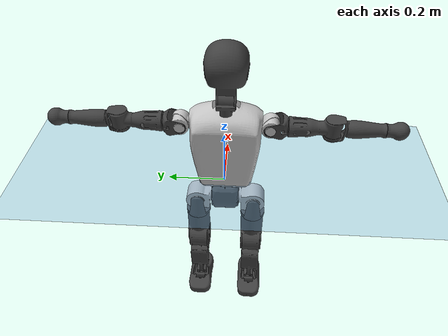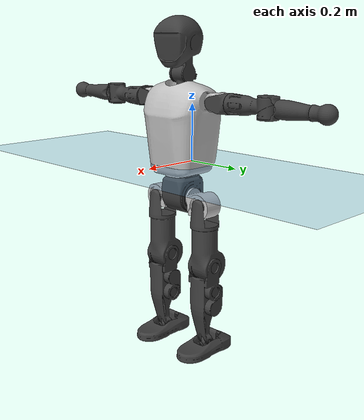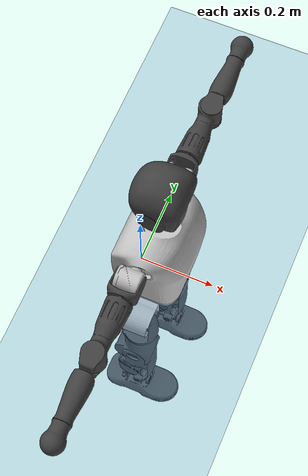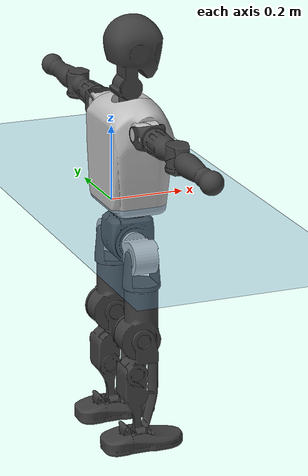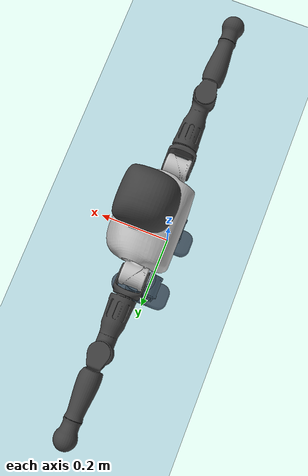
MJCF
<mujoco model="T1">
  <compiler angle="radian" assetdir="assets" balanceinertia="true" inertiafromgeom="false"/>

  <option timestep="0.005" density="1.2" viscosity="2e-05"/>

  <size nkey="1"/>

  <visual>
    <quality shadowsize="8192"/>
    <map shadowclip="0.5"/>
  </visual>

  <default>
    <default class="/">
      <joint armature="0.01" damping="0.01" frictionloss="0.1"/>
      <geom contype="0" conaffinity="0" group="1" solref="-1000 -80"/>
      <site size="0.01 0.005 0.005" group="5"/>
      <general forcelimited="true" biastype="affine" gainprm="25" biasprm="0 -25 -0.6"/>
      <default class="t1">
        <geom rgba="0.25 0.25 0.25 1"/>
        <default class="visual">
          <geom type="mesh" group="2"/>
        </default>
        <default class="collision">
          <geom group="3"/>
        </default>
        <default class="foot">
          <geom size="0.1115 0.05 0.015" type="box" condim="6" group="4" priority="1" solimp="0.015 1 0.015"/>
        </default>
        <default class="reward_collision_sphere">
          <geom group="5" rgba="1 0 0 1"/>
        </default>
      </default>
    </default>
  </default>

  <asset>
    <texture type="skybox" colorspace="auto" name="//unnamed_texture_0" builtin="gradient" rgb1="0.95 0.95 0.95" rgb2="0.95 0.95 0.95" width="100" height="600"/>
    <texture type="2d" colorspace="auto" name="texplane" builtin="checker" rgb1="0.345 0.575 0.748" rgb2="0.345 0.575 0.748" markrgb="1 1 1" width="512" height="512"/>
    <material name="MatPlane" class="/" texture="texplane" texuniform="true" texrepeat="2 2" specular="0.9"/>
    <mesh name="Trunk" class="/" file="Trunk.stl"/>
    <mesh name="H1" class="/" file="H1.stl"/>
    <mesh name="H2" class="/" file="H2.stl"/>
    <mesh name="AL1" class="/" file="AL1.stl"/>
    <mesh name="AL2" class="/" file="AL2.stl"/>
    <mesh name="AL3" class="/" file="AL3.stl"/>
    <mesh name="left_hand_link" class="/" file="left_hand_link.stl"/>
    <mesh name="AR1" class="/" file="AR1.stl"/>
    <mesh name="AR2" class="/" file="AR2.stl"/>
    <mesh name="AR3" class="/" file="AR3.stl"/>
    <mesh name="right_hand_link" class="/" file="right_hand_link.stl"/>
    <mesh name="Waist" class="/" file="Waist.stl"/>
    <mesh name="Hip_Pitch_Left" class="/" file="Hip_Pitch_Left.stl"/>
    <mesh name="Hip_Roll_Left" class="/" file="Hip_Roll_Left.stl"/>
    <mesh name="Hip_Yaw_Left" class="/" file="Hip_Yaw_Left.stl"/>
    <mesh name="Shank_Left" class="/" file="Shank_Left.stl"/>
    <mesh name="Ankle_Cross_Left" class="/" file="Ankle_Cross_Left.stl"/>
    <mesh name="left_foot_link" class="/" file="left_foot_link.stl"/>
    <mesh name="Hip_Pitch_Right" class="/" file="Hip_Pitch_Right.stl"/>
    <mesh name="Hip_Roll_Right" class="/" file="Hip_Roll_Right.stl"/>
    <mesh name="Hip_Yaw_Right" class="/" file="Hip_Yaw_Right.stl"/>
    <mesh name="Shank_Right" class="/" file="Shank_Right.stl"/>
    <mesh name="Ankle_Cross_Right" class="/" file="Ankle_Cross_Right.stl"/>
    <mesh name="right_foot_link" class="/" file="right_foot_link.stl"/>
  </asset>

  <worldbody>
    <geom name="floor" class="/" size="100 100 0.125" type="plane" group="0" material="MatPlane"/>
    <light name="toplight_shadow" class="/" pos="0 0 5" dir="0.0990148 0.0990148 -0.990148" type="directional" ambient="0.04 0.04 0.04" diffuse="0.55 0.55 0.55" specular="0.12 0.12 0.12"/>
    <light name="toplight_fill" class="/" pos="0 0 5" dir="0.0990148 0.0990148 -0.990148" type="directional" castshadow="false" ambient="0.04 0.04 0.04" diffuse="0.3 0.3 0.3" specular="0.08 0.08 0.08"/>
    <body name="trunk" childclass="t1" pos="-0.00255643 -0.0022202 0.00282092" quat="0.999999 0.000254762 0.000532571 -0.00128344">
      <inertial pos="0.0380434 -0.00290735 0.106142" quat="0.999963 0.00126471 -0.00849112 -4.5307e-05" mass="8.50828" diaginertia="0.0164258 0.0791466 0.0523912"/>
      <joint name="//unnamed_joint_0" type="free" armature="0" damping="0" frictionloss="0"/>
      <geom name="//unnamed_geom_1" class="visual" rgba="0.76 0.76 0.76 1" mesh="Trunk"/>
      <geom name="//unnamed_geom_2" class="collision" size="0.0671301 0.0895068 0.13426" pos="0.0422123 0 0.118136" type="box"/>
      <geom name="//unnamed_geom_3" class="reward_collision_sphere" size="0.102933" pos="0.0422123 0 0.0984469"/>
      <geom name="//unnamed_geom_4" class="reward_collision_sphere" size="0.013426" pos="0.0422123 0.0847616 0"/>
      <geom name="//unnamed_geom_5" class="reward_collision_sphere" size="0.013426" pos="0.0422123 -0.0847616 0"/>
      <geom name="//unnamed_geom_6" class="reward_collision_sphere" size="0.013426" pos="0.0422123 0.1067 0.177204"/>
      <geom name="//unnamed_geom_7" class="reward_collision_sphere" size="0.013426" pos="0.0422123 -0.1067 0.177204"/>
      <site name="imu" pos="-0.0138772 -0.0076994 -0.00495399" size="0.00895068"/>
      <camera name="track" pos="0 -1.99439 0" quat="0.707107 0.707107 0 0" mode="trackcom"/>
      <camera name="ego_camera" pos="0.0858317 0 0.413477" quat="-0.5 -0.5 0.5 0.5"/>
      <body name="H1" pos="0.0446971 6.964e-05 0.239648" quat="0.999999 0.000134082 -0.000644429 0.00116902">
        <inertial pos="0.00158262 -0.00217918 0.0593319" quat="0.76396 -0.0131934 0.00223529 0.645125" mass="0.32631" diaginertia="4.23079e-05 0.00023056 0.000135466"/>
        <joint name="AAHead_yaw" pos="0 0 0" axis="0.00656202 0.00239301 0.999976" range="-1.62578 1.57184" armature="0.010261" damping="0.00916385" frictionloss="0.0777992"/>
        <geom name="//unnamed_geom_8" class="visual" mesh="H1"/>
        <body name="H2" pos="0.00156664 -0.00028609 0.06131" quat="1 0.00017185 0.000191143 0.000139353">
          <inertial pos="0.00433845 0.000356637 0.0967532" quat="0.987962 0.107608 -0.0771031 -0.080046" mass="0.439972" diaginertia="0.000336144 0.00183942 0.0015553"/>
          <joint name="Head_pitch" pos="0 0 0" axis="0.0108968 -0.999931 0.00427927" range="-1.22571 0.404936" armature="0.00917036" damping="0.0104923" frictionloss="0.078789"/>
          <geom name="//unnamed_geom_9" class="visual" mesh="H2"/>
          <geom name="//unnamed_geom_10" class="collision" size="0.0716054" pos="0.00703538 0 0.108292"/>
          <geom name="//unnamed_geom_11" class="reward_collision_sphere" size="0.0805561" pos="0.0140708 0 0.0984469"/>
        </body>
      </body>
      <body name="AL1" pos="0.0386337 0.104513 0.216102" quat="0.999999 -0.000734388 0.000863015 -0.00037805">
        <inertial pos="-0.000764055 0.046177 -0.000736982" quat="0.499954 0.496447 -0.504259 0.499309" mass="0.378139" diaginertia="0.00023721 0.00128334 0.000268693"/>
        <joint name="Left_Shoulder_Pitch" pos="0 0 0" axis="0.00877778 0.999961 0.000792526" stiffness="0.0156526" range="-3.30306 1.17096" armature="0.00825928" damping="0.0106673" frictionloss="0.0886023"/>
        <geom name="//unnamed_geom_12" class="visual" rgba="0.76 0.76 0.76 1" mesh="AL1"/>
        <body name="AL2" pos="-0.000150077 0.0454876 -0.00223428" quat="1 1.08588e-05 0.000239568 -0.000203644">
          <inertial pos="0.0010085 0.0377832 8.10433e-05" quat="0.488091 0.511285 -0.487404 0.512633" mass="0.113945" diaginertia="6.88879e-05 0.000330698 0.000162441"/>
          <joint name="Left_Shoulder_Roll" pos="0 0 0" axis="-0.999991 0.00244129 0.00360378" stiffness="0.00382862" range="-1.54504 1.70729" armature="0.00773428" damping="0.00643569" frictionloss="0.0960367"/>
          <geom name="//unnamed_geom_13" class="visual" mesh="AL2"/>
          <body name="AL3" pos="0.00306556 0.0607397 0.00116898" quat="1 -0.000352336 -0.000275282 -6.54729e-05">
            <inertial pos="-0.000206311 0.083084 -0.0024918" quat="0.710118 0.70396 -0.0111218 -0.00692274" mass="0.704426" diaginertia="0.00212197 0.0124606 0.000551315"/>
            <joint name="Left_Elbow_Pitch" pos="0 0 0" axis="-0.00389319 -0.999935 0.0106708" range="-2.27277 2.25637" armature="0.00954431" damping="0.00369195" frictionloss="0.100408"/>
            <geom name="//unnamed_geom_14" class="visual" mesh="AL3"/>
            <geom name="//unnamed_geom_15" class="collision" size="0.026852 0.0671301" pos="0 0.0498598 0" quat="0.707105 0.707108 0 0" type="cylinder"/>
            <geom name="//unnamed_geom_16" class="reward_collision_sphere" size="0.0322224"/>
            <body name="left_hand_link" pos="0.00317694 0.146455 -0.000155348" quat="0.999999 -0.00121597 1.39043e-06 -0.000602011">
              <inertial pos="0.000253132 0.108907 -0.00171277" quat="0.706987 0.707226 0.00084083 0.000357105" mass="0.242095" diaginertia="0.0014494 0.00797978 0.000200605"/>
              <joint name="Left_Elbow_Yaw" pos="0 0 0" axis="0.0176263 -0.00198015 0.999843" stiffness="0.00999662" range="-2.44539 -0.0170827" armature="0.00820389" damping="0.00840453" frictionloss="0.102116"/>
              <geom name="//unnamed_geom_17" class="visual" mesh="left_hand_link"/>
              <geom name="//unnamed_geom_18" class="collision" size="0.026852 0.0783184" pos="0 0.129635 0" quat="0.707105 0.707108 0 0" type="cylinder"/>
              <geom name="//unnamed_geom_19" class="reward_collision_sphere" size="0.0447534"/>
              <geom name="//unnamed_geom_20" class="reward_collision_sphere" size="0.0313274" pos="0 0.109691 0"/>
              <geom name="//unnamed_geom_21" class="reward_collision_sphere" size="0.0313274" pos="0 0.214397 0"/>
            </body>
          </body>
        </body>
      </body>
      <body name="AR1" pos="0.0389257 -0.102303 0.215587" quat="0.999999 -0.000881548 0.000736839 -0.000864718">
        <inertial pos="-0.0022305 -0.0463174 0.00121767" quat="0.502708 0.499639 -0.501793 0.495832" mass="0.380794" diaginertia="0.000231378 0.00129359 0.000282143"/>
        <joint name="Right_Shoulder_Pitch" pos="0 0 0" axis="-0.00240257 -0.999997 0.000489404" stiffness="0.00634617" range="-1.26028 3.31187" armature="0.00769625" damping="0.0171788" frictionloss="0.0934559"/>
        <geom name="//unnamed_geom_22" class="visual" rgba="0.76 0.76 0.76 1" mesh="AR1"/>
        <body name="AR2" pos="-0.000666699 -0.0440171 -0.000734558" quat="1 0.000141745 -0.000297603 -5.90465e-05">
          <inertial pos="0.00162493 -0.0377333 -0.000815347" quat="0.523174 0.480321 -0.509877 0.485393" mass="0.121233" diaginertia="6.81901e-05 0.000343427 0.000162858"/>
          <joint name="Right_Shoulder_Roll" pos="0 0 0" axis="-1 -0.000220101 -2.56677e-06" stiffness="0.00202089" range="-1.77422 1.60301" armature="0.00900376" damping="0" frictionloss="0.0912577"/>
          <geom name="//unnamed_geom_23" class="visual" mesh="AR2"/>
          <body name="AR3" pos="0.0023045 -0.0599236 -0.00365511" quat="1 0.000148654 -7.84522e-06 -0.000234374">
            <inertial pos="0.00199824 -0.0879657 -5.91022e-05" quat="0.708406 0.705804 -0.00072751 5.23545e-05" mass="0.742616" diaginertia="0.00226925 0.0133882 0.000610952"/>
            <joint name="Right_Elbow_Pitch" pos="0 0 0" axis="0.00592741 0.999937 -0.00950451" range="-2.2831 2.25852" armature="0.00945165" damping="0.00950182" frictionloss="0.0834174"/>
            <geom name="//unnamed_geom_24" class="visual" mesh="AR3"/>
            <geom name="//unnamed_geom_25" class="collision" size="0.026852 0.0671301" pos="0 -0.0498598 0" quat="0.707105 0.707108 0 0" type="cylinder"/>
            <geom name="//unnamed_geom_26" class="reward_collision_sphere" size="0.0322224"/>
            <body name="right_hand_link" pos="-0.00102333 -0.147093 -6.90059e-05" quat="0.999999 0.000943391 -0.000768756 0.000650118">
              <inertial pos="-0.00145516 -0.108001 0.000243302" quat="0.705687 0.708518 0.00297803 0.000573044" mass="0.234909" diaginertia="0.00139054 0.00802259 0.000207002"/>
              <joint name="Right_Elbow_Yaw" pos="0 0 0" axis="-0.00181881 -0.00974162 0.999951" range="-0.0259212 2.44952" armature="0.00866745" damping="0" frictionloss="0.0970196"/>
              <geom name="//unnamed_geom_27" class="visual" mesh="right_hand_link"/>
              <geom name="//unnamed_geom_28" class="collision" size="0.026852 0.0783184" pos="0 -0.129635 0" quat="0.707105 0.707108 0 0" type="cylinder"/>
              <geom name="//unnamed_geom_29" class="reward_collision_sphere" size="0.0447534"/>
              <geom name="//unnamed_geom_30" class="reward_collision_sphere" size="0.0313274" pos="0 -0.109691 0"/>
              <geom name="//unnamed_geom_31" class="reward_collision_sphere" size="0.0313274" pos="0 -0.214397 0"/>
            </body>
          </body>
        </body>
      </body>
      <body name="Waist" pos="0.0478035 0.00110972 -0.113339" quat="0.999999 -0.000238955 -0.000250031 0.00113749">
        <inertial pos="0.00256346 -0.00143581 0.0101015" quat="0.981463 -0.00724177 -0.191443 0.00529126" mass="1.78278" diaginertia="0.00089787 0.00526475 0.00435655"/>
        <joint name="Waist" pos="0 0 0" axis="-0.00849584 0.00586439 0.999947" stiffness="0.00567399" range="-1.57209 1.5884" armature="0.0100131" damping="0.0161053" frictionloss="0.0808141"/>
        <geom name="//unnamed_geom_32" class="visual" mesh="Waist"/>
        <body name="Hip_Pitch_Left" pos="0.00304386 0.10654 -0.00276837" quat="0.999999 -0.000400803 -0.0013657 0.000351311">
          <inertial pos="0.00109112 -0.00475631 -0.019356" quat="0.975471 0.219662 0.0143097 -0.00083651" mass="0.752632" diaginertia="0.000305624 0.00142434 0.00118842"/>
          <joint name="Left_Hip_Pitch" pos="0 0 0" axis="0.016884 0.999841 -0.0056749" stiffness="0.00484168" range="-1.80547 1.59956" armature="0.0093307" damping="0.00410167" frictionloss="0.0877762"/>
          <geom name="//unnamed_geom_33" class="visual" rgba="0.76 0.76 0.76 1" mesh="Hip_Pitch_Left"/>
          <body name="Hip_Roll_Left" pos="0.000320743 0.00133369 -0.0187472" quat="1 -4.28131e-05 7.64903e-05 -0.000845703">
            <inertial pos="-0.00177377 0.00209486 -0.0523357" quat="0.70539 0.00594545 -0.0104813 0.708717" mass="0.283982" diaginertia="0.000303822 0.00145923 0.000476362"/>
            <joint name="Left_Hip_Roll" pos="0 0 0" axis="-0.999944 -0.00951304 0.0045276" range="-1.55347 0.255228" armature="0.00836534" damping="0.0137" frictionloss="0.0778675"/>
            <geom name="//unnamed_geom_34" class="visual" mesh="Hip_Roll_Left"/>
            <geom name="//unnamed_geom_35" class="reward_collision_sphere" size="0.0492287"/>
            <body name="Hip_Yaw_Left" pos="-0.0018574 0.00168002 -0.0789045" quat="1 0.000119333 0.000627593 -0.000207627">
              <inertial pos="-0.00503884 -0.000304478 -0.0877874" quat="0.694653 -0.0339932 -0.0285698 0.717974" mass="1.45711" diaginertia="0.00427033 0.0241609 0.0022467"/>
              <joint name="Left_Hip_Yaw" pos="0 0 0" axis="-0.00598287 0.00259015 -0.999979" range="-0.949448 0.959932" armature="0.00921338" damping="0.0175809" frictionloss="0.0865944"/>
              <geom name="//unnamed_geom_36" class="visual" mesh="Hip_Yaw_Left"/>
              <geom name="//unnamed_geom_37" class="collision" size="0.0447534 0.0716054" type="cylinder"/>
              <body name="Shank_Left" pos="-0.00599271 0.000930041 -0.134167" quat="1 -0.000132284 0.000468558 -7.38138e-05">
                <inertial pos="-0.00335216 -0.00046273 -0.12232" quat="0.997645 0.000857237 -0.0239045 0.0642849" mass="1.25842" diaginertia="0.00607365 0.0340703 0.00174841"/>
                <joint name="Left_Knee_Pitch" pos="0 0 0" axis="-0.00211846 0.999983 0.00550884" stiffness="0.00188319" range="0.0546809 2.3395" armature="0.00991389" damping="0.025137" frictionloss="0.0878198"/>
                <geom name="//unnamed_geom_38" class="visual" mesh="Shank_Left"/>
                <geom name="//unnamed_geom_39" class="collision" size="0.0447534 0.0671301" pos="0 0 -0.118136" type="cylinder"/>
                <geom name="//unnamed_geom_40" class="reward_collision_sphere" size="0.0581794"/>
                <body name="Ankle_Cross_Left" pos="0.00244547 0.000607812 -0.278466" quat="1 6.89204e-05 7.42883e-06 -5.14459e-05">
                  <inertial pos="-0.00157114 0.000772804 -0.00505452" quat="0.444243 0.549742 0.552117 0.442265" mass="0.0507138" diaginertia="5.15336e-06 2.52235e-05 1.05552e-05"/>
                  <joint name="Left_Ankle_Pitch" pos="0 0 0" axis="-0.00391844 0.999991 -0.00169516" range="-0.918053 0.322208" armature="0.00912331" damping="0.0128918" frictionloss="0.0771885"/>
                  <geom name="//unnamed_geom_41" class="visual" mesh="Ankle_Cross_Left"/>
                  <body name="left_foot_link" pos="0.000865567 0.00248473 -0.0119061" quat="1 5.62638e-05 0.000196009 -0.000155919">
                    <inertial pos="0.00116772 -0.000836557 -0.0114194" quat="-0.00456538 0.614955 -0.00633869 0.788523" mass="0.513186" diaginertia="0.000482693 0.00242825 0.00202989"/>
                    <joint name="Left_Ankle_Roll" pos="0 0 0" axis="-0.999946 0.00785322 -0.00684128" range="-0.440048 0.384526" armature="0.00890558" damping="0" frictionloss="0.100073"/>
                    <geom name="//unnamed_geom_42" class="visual" mesh="left_foot_link"/>
                    <geom name="left_foot" class="foot" size="0.107867 0.040186 0.0134963" pos="0.00703538 0 -0.014767"/>
                    <geom name="//unnamed_geom_44" class="reward_collision_sphere" size="0.0465435" pos="0.00703538 0 -0.014767"/>
                    <geom name="//unnamed_geom_45" class="reward_collision_sphere" size="0.026852" pos="0.0668361 -0.0229355 -0.014767"/>
                    <geom name="//unnamed_geom_46" class="reward_collision_sphere" size="0.026852" pos="-0.0492477 -0.0229355 -0.014767"/>
                    <site name="left_foot" class="foot" pos="0.00703538 0 -0.014767" size="0.00895068"/>
                  </body>
                </body>
              </body>
            </body>
          </body>
        </body>
        <body name="Hip_Pitch_Right" pos="-0.00278423 -0.106222 -0.00116203" quat="0.999999 0.000987894 -0.000894025 0.00083432">
          <inertial pos="-0.00253111 0.00572945 -0.015531" quat="0.973252 -0.228854 0.019681 -0.00441584" mass="0.736805" diaginertia="0.000320153 0.00150014 0.00118712"/>
          <joint name="Right_Hip_Pitch" pos="0 0 0" axis="0.00686985 -0.999959 0.00592267" range="-1.57561 1.82031" armature="0.00936827" damping="0" frictionloss="0.100952"/>
          <geom name="//unnamed_geom_47" class="visual" rgba="0.76 0.76 0.76 1" mesh="Hip_Pitch_Right"/>
          <body name="Hip_Roll_Right" pos="0.00154798 -0.00136182 -0.0221782" quat="1 -2.78783e-06 0.000154933 0.000152938">
            <inertial pos="-0.000847117 -0.00305574 -0.0551227" quat="0.709813 -0.014671 -0.0162376 0.70405" mass="0.285651" diaginertia="0.000301465 0.00151139 0.000466585"/>
            <joint name="Right_Hip_Roll" pos="0 0 0" axis="-1 0.000269144 0.000210497" stiffness="0.00117684" range="-0.256836 1.55925" armature="0.0103242" damping="0.0127326" frictionloss="0.0769019"/>
            <geom name="//unnamed_geom_48" class="visual" mesh="Hip_Roll_Right"/>
            <geom name="//unnamed_geom_49" class="reward_collision_sphere" size="0.0492287"/>
            <body name="Hip_Yaw_Right" pos="-0.00240861 0.00033173 -0.0814881" quat="1 -0.000133511 1.24155e-06 -0.00020145">
              <inertial pos="-0.00467844 -0.00204166 -0.0871703" quat="0.714891 -0.0325545 -0.0308844 0.697795" mass="1.57256" diaginertia="0.00438191 0.0260332 0.00238254"/>
              <joint name="Right_Hip_Yaw" pos="0 0 0" axis="0.00251916 -0.00542445 -0.999982" stiffness="0.000190865" range="-1.00472 1.0125" armature="0.00873194" damping="0" frictionloss="0.08678"/>
              <geom name="//unnamed_geom_50" class="visual" mesh="Hip_Yaw_Right"/>
              <geom name="//unnamed_geom_51" class="collision" size="0.0447534 0.0716054" type="cylinder"/>
              <body name="Shank_Right" pos="-0.00879809 -0.000107258 -0.134733" quat="1 0.000185495 0.000103318 -3.15652e-05">
                <inertial pos="-0.00355299 -0.000534132 -0.118594" quat="0.999051 0.00374493 -0.0166969 -0.040051" mass="1.29318" diaginertia="0.0060749 0.0336653 0.00176465"/>
                <joint name="Right_Knee_Pitch" pos="0 0 0" axis="-0.00109294 -0.999999 -0.000272142" range="-2.33698 0.00515706" armature="0.00965536" damping="0.0148181" frictionloss="0.101869"/>
                <geom name="//unnamed_geom_52" class="visual" mesh="Shank_Right"/>
                <geom name="//unnamed_geom_53" class="collision" size="0.0447534 0.0671301" pos="0 0 -0.118136" type="cylinder"/>
                <geom name="//unnamed_geom_54" class="reward_collision_sphere" size="0.0581794"/>
                <body name="Ankle_Cross_Right" pos="0.00316907 0.00156312 -0.27605" quat="1 -0.000420408 0.000713315 0.000137189">
                  <inertial pos="-0.00048368 0.00289927 -0.00823999" quat="0.441791 0.560621 0.541021 0.444771" mass="0.0508493" diaginertia="5.1605e-06 2.53107e-05 1.01295e-05"/>
                  <joint name="Right_Ankle_Pitch" pos="0 0 0" axis="-0.000109256 -1 0.000118467" range="-0.395124 0.85135" armature="0.00945844" damping="0.0131593" frictionloss="0.0980691"/>
                  <geom name="//unnamed_geom_55" class="visual" mesh="Ankle_Cross_Right"/>
                  <body name="right_foot_link" pos="-0.000774499 -0.0030749 -0.00941325" quat="1 0.000293351 -0.000393435 5.45249e-05">
                    <inertial pos="0.000526842 6.99961e-05 -0.00622511" quat="0.011477 0.622961 0.00175607 0.782167" mass="0.48426" diaginertia="0.000462737 0.00237143 0.0019445"/>
                    <joint name="Right_Ankle_Roll" pos="0 0 0" axis="-0.999943 -0.0104203 -0.00213728" range="-0.445135 0.392005" armature="0.0100554" damping="0.0147289" frictionloss="0.0845931"/>
                    <geom name="//unnamed_geom_56" class="visual" mesh="right_foot_link"/>
                    <geom name="right_foot" class="foot" size="0.103486 0.0393419 0.0121039" pos="0.00703538 0 -0.014767"/>
                    <geom name="//unnamed_geom_58" class="reward_collision_sphere" size="0.0358027"/>
                    <geom name="//unnamed_geom_59" class="reward_collision_sphere" size="0.026852" pos="0.00703538 0 -0.014767"/>
                    <geom name="//unnamed_geom_60" class="reward_collision_sphere" size="0.026852" pos="0.0668361 0.0229355 -0.014767"/>
                    <geom name="//unnamed_geom_61" class="reward_collision_sphere" size="0.026852" pos="-0.0492477 0.0229355 -0.014767"/>
                    <site name="right_foot" class="foot" pos="0.00703538 0 -0.014767" size="0.00895068"/>
                  </body>
                </body>
              </body>
            </body>
          </body>
        </body>
      </body>
    </body>
  </worldbody>

  <contact>
    <pair class="/" geom1="floor" geom2="left_foot" name="//unnamed_contact_0"/>
    <pair class="/" geom1="floor" geom2="right_foot" name="//unnamed_contact_1"/>
  </contact>

  <actuator>
    <general name="AAHead_yaw" class="/" joint="AAHead_yaw" forcerange="-5.88107 5.88107" gainprm="21.4758" biasprm="0 -21.4758 -0.529625"/>
    <general name="Head_pitch" class="/" joint="Head_pitch" forcerange="-6.82161 6.82161" gainprm="21.4758" biasprm="0 -21.4758 -0.529625"/>
    <general name="Left_Shoulder_Pitch" class="/" joint="Left_Shoulder_Pitch" forcerange="-15.6959 15.6959" gainprm="21.4758" biasprm="0 -21.4758 -0.529625"/>
    <general name="Left_Shoulder_Roll" class="/" joint="Left_Shoulder_Roll" forcerange="-17.4412 17.4412" gainprm="21.4758" biasprm="0 -21.4758 -0.529625"/>
    <general name="Left_Elbow_Pitch" class="/" joint="Left_Elbow_Pitch" forcerange="-17.5536 17.5536" gainprm="21.4758" biasprm="0 -21.4758 -0.529625"/>
    <general name="Left_Elbow_Yaw" class="/" joint="Left_Elbow_Yaw" forcerange="-16.3729 16.3729" gainprm="21.4758" biasprm="0 -21.4758 -0.529625"/>
    <general name="Right_Shoulder_Pitch" class="/" joint="Right_Shoulder_Pitch" forcerange="-16.1607 16.1607" gainprm="21.4758" biasprm="0 -21.4758 -0.529625"/>
    <general name="Right_Shoulder_Roll" class="/" joint="Right_Shoulder_Roll" forcerange="-17.5271 17.5271" gainprm="21.4758" biasprm="0 -21.4758 -0.529625"/>
    <general name="Right_Elbow_Pitch" class="/" joint="Right_Elbow_Pitch" forcerange="-17.8277 17.8277" gainprm="21.4758" biasprm="0 -21.4758 -0.529625"/>
    <general name="Right_Elbow_Yaw" class="/" joint="Right_Elbow_Yaw" forcerange="-14.5814 14.5814" gainprm="21.4758" biasprm="0 -21.4758 -0.529625"/>
    <general name="Waist" class="/" joint="Waist" forcerange="-26.9952 26.9952" gainprm="21.4758" biasprm="0 -21.4758 -0.529625"/>
    <general name="Left_Hip_Pitch" class="/" joint="Left_Hip_Pitch" forcerange="-44.4461 44.4461" gainprm="21.4758" biasprm="0 -21.4758 -0.529625"/>
    <general name="Left_Hip_Roll" class="/" joint="Left_Hip_Roll" forcerange="-26.9749 26.9749" gainprm="21.4758" biasprm="0 -21.4758 -0.529625"/>
    <general name="Left_Hip_Yaw" class="/" joint="Left_Hip_Yaw" forcerange="-28.9619 28.9619" gainprm="21.4758" biasprm="0 -21.4758 -0.529625"/>
    <general name="Left_Knee_Pitch" class="/" joint="Left_Knee_Pitch" forcerange="-53.82 53.82" gainprm="21.4758" biasprm="0 -21.4758 -0.529625"/>
    <general name="Left_Ankle_Pitch" class="/" joint="Left_Ankle_Pitch" forcerange="-18.956 18.956" gainprm="21.4758" biasprm="0 -21.4758 -0.529625"/>
    <general name="Left_Ankle_Roll" class="/" joint="Left_Ankle_Roll" forcerange="-13.4203 13.4203" gainprm="21.4758" biasprm="0 -21.4758 -0.529625"/>
    <general name="Right_Hip_Pitch" class="/" joint="Right_Hip_Pitch" forcerange="-41.8744 41.8744" gainprm="21.4758" biasprm="0 -21.4758 -0.529625"/>
    <general name="Right_Hip_Roll" class="/" joint="Right_Hip_Roll" forcerange="-27.1385 27.1385" gainprm="21.4758" biasprm="0 -21.4758 -0.529625"/>
    <general name="Right_Hip_Yaw" class="/" joint="Right_Hip_Yaw" forcerange="-25.7417 25.7417" gainprm="21.4758" biasprm="0 -21.4758 -0.529625"/>
    <general name="Right_Knee_Pitch" class="/" joint="Right_Knee_Pitch" forcerange="-47.9511 47.9511" gainprm="21.4758" biasprm="0 -21.4758 -0.529625"/>
    <general name="Right_Ankle_Pitch" class="/" joint="Right_Ankle_Pitch" forcerange="-16.3321 16.3321" gainprm="21.4758" biasprm="0 -21.4758 -0.529625"/>
    <general name="Right_Ankle_Roll" class="/" joint="Right_Ankle_Roll" forcerange="-14.8506 14.8506" gainprm="21.4758" biasprm="0 -21.4758 -0.529625"/>
  </actuator>

  <sensor>
    <gyro site="imu" name="imu_angular_velocity"/>
    <velocimeter site="imu" name="imu_linear_velocity"/>
    <framelinvel objtype="site" objname="left_foot" name="left_foot_global_linear_velocity"/>
    <framelinvel objtype="site" objname="right_foot" name="right_foot_global_linear_velocity"/>
  </sensor>

  <keyframe>
    <key name="home" qpos="0 0 0.6385 1 0 0 0 0 0 0 1.4 0 -0.4 0 -1.4 0 0.4 0 -0.4 0 0 0.8 -0.4 0 0.4 0 0 -0.8 0.4 0"/>
  </keyframe>
</mujoco>
